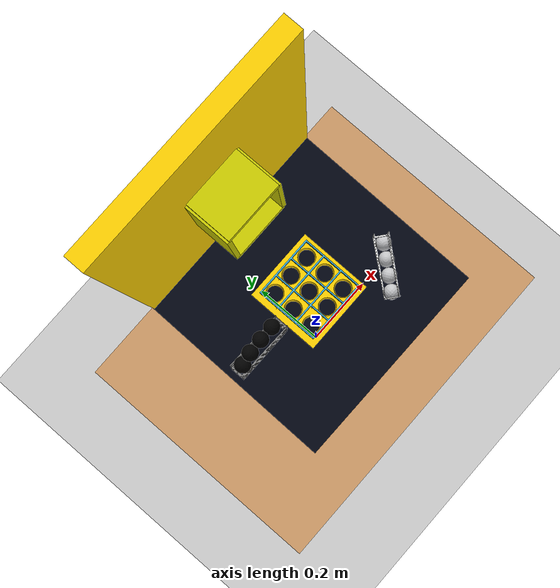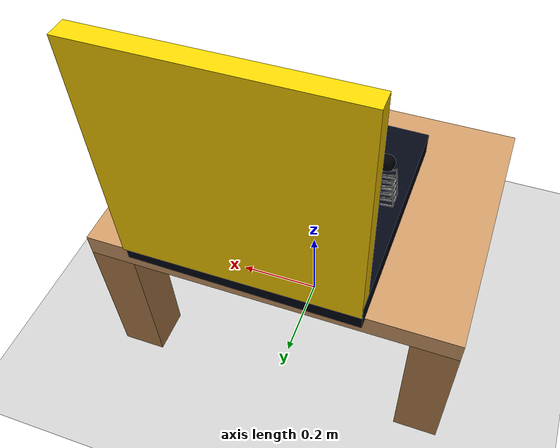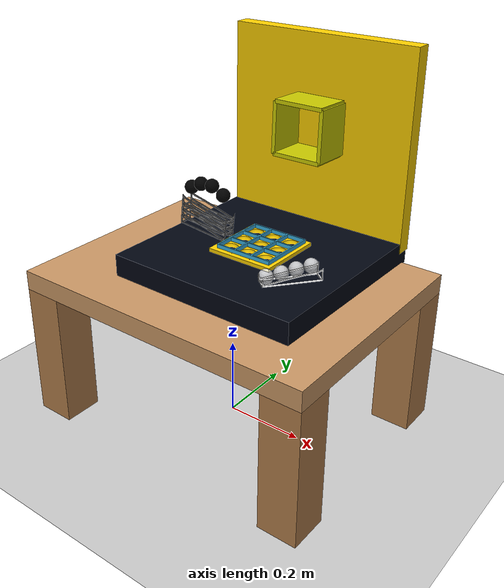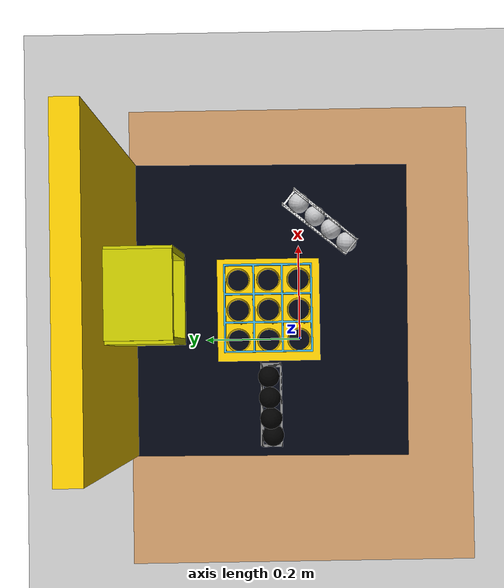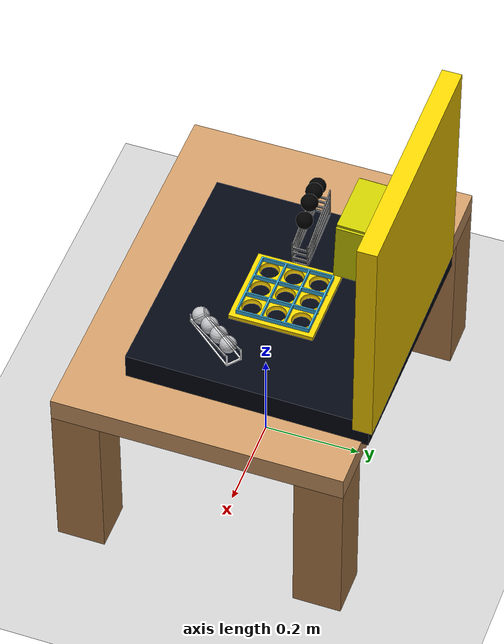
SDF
<sdf version="1.10">
 <world name="WORKINGPROTO">
  <physics name="1ms" type="ignored">
   <max_step_size>0.001</max_step_size>
   <real_time_factor>1</real_time_factor>
   <real_time_update_rate>1000</real_time_update_rate>
  </physics>
  <plugin name="gz::sim::systems::Physics" filename="gz-sim-physics-system"/>
  <plugin name="gz::sim::systems::UserCommands" filename="gz-sim-user-commands-system"/>
  <plugin name="gz::sim::systems::SceneBroadcaster" filename="gz-sim-scene-broadcaster-system"/>
  <plugin name="gz::sim::systems::Sensors" filename="gz-sim-sensors-system">
   <render_engine>ogre2</render_engine>
  </plugin>
  <gravity>0 0 -9.8000000000000007</gravity>
  <magnetic_field>5.5644999999999998e-06 2.2875799999999999e-05 -4.2388400000000002e-05</magnetic_field>
  <atmosphere type="adiabatic"/>
  <scene>
   <ambient>0.400000006 0.400000006 0.400000006 1</ambient>
   <background>0.699999988 0.699999988 0.699999988 1</background>
   <shadows>true</shadows>
  </scene>
  <model name="ground_plane">
   <static>true</static>
   <link name="link">
    <collision name="collision">
     <geometry><plane><normal>0 0 1</normal><size>100 100</size></plane></geometry>
     <surface>
      <contact><collide_bitmask>65535</collide_bitmask><ode><mu>100</mu><mu2>50</mu2></ode></contact>
      <friction><ode><mu>100</mu><mu2>50</mu2></ode></friction>
     </surface>
    </collision>
    <visual name="visual">
     <cast_shadows>false</cast_shadows>
     <geometry><plane><normal>0 0 1</normal><size>100 100</size></plane></geometry>
     <material>
      <ambient>0.800000012 0.800000012 0.800000012 1</ambient>
      <diffuse>0.800000012 0.800000012 0.800000012 1</diffuse>
      <specular>0 0 0 1</specular>
     </material>
    </visual>
    <inertial>
     <mass>1</mass>
     <inertia><ixx>1</ixx><ixy>0</ixy><ixz>0</ixz><iyy>1</iyy><iyz>0</iyz><izz>1</izz></inertia>
    </inertial>
   </link>
  </model>
  <model name="study_table">
   <static>true</static>
   <link name="table_link">
    <inertial>
     <mass>50</mass>
     <inertia><ixx>10</ixx><iyy>8</iyy><izz>6</izz><ixy>0</ixy><ixz>0</ixz><iyz>0</iyz></inertia>
    </inertial>
    <visual name="table_top">
     <pose>0 0 0.375 0 0 0</pose>
     <geometry><box><size>0.80000000000000004 0.59999999999999998 0.050000000000000003</size></box></geometry>
     <material>
      <ambient>0.800000012 0.600000024 0.400000006 1</ambient>
      <diffuse>0.800000012 0.600000024 0.400000006 1</diffuse>
     </material>
    </visual>
    <visual name="table_leg1">
     <pose>0.34999999999999998 0.25 0.17499999999999999 0 0 0</pose>
     <geometry><box><size>0.10000000000000001 0.10000000000000001 0.34999999999999998</size></box></geometry>
     <material>
      <ambient>0.699999988 0.5 0.300000012 1</ambient>
      <diffuse>0.699999988 0.5 0.300000012 1</diffuse>
     </material>
    </visual>
    <visual name="table_leg2">
     <pose>-0.34999999999999998 0.25 0.17499999999999999 0 0 0</pose>
     <geometry><box><size>0.10000000000000001 0.10000000000000001 0.34999999999999998</size></box></geometry>
     <material>
      <ambient>0.699999988 0.5 0.300000012 1</ambient>
      <diffuse>0.699999988 0.5 0.300000012 1</diffuse>
     </material>
    </visual>
    <visual name="table_leg3">
     <pose>0.34999999999999998 -0.25 0.17499999999999999 0 0 0</pose>
     <geometry><box><size>0.10000000000000001 0.10000000000000001 0.34999999999999998</size></box></geometry>
     <material>
      <ambient>0.699999988 0.5 0.300000012 1</ambient>
      <diffuse>0.699999988 0.5 0.300000012 1</diffuse>
     </material>
    </visual>
    <visual name="table_leg4">
     <pose>-0.34999999999999998 -0.25 0.17499999999999999 0 0 0</pose>
     <geometry><box><size>0.10000000000000001 0.10000000000000001 0.34999999999999998</size></box></geometry>
     <material>
      <ambient>0.699999988 0.5 0.300000012 1</ambient>
      <diffuse>0.699999988 0.5 0.300000012 1</diffuse>
     </material>
    </visual>
    <collision name="table_collision">
     <pose>0 0 0.375 0 0 0</pose>
     <geometry><box><size>0.80000000000000004 0.59999999999999998 0.050000000000000003</size></box></geometry>
    </collision>
   </link>
  </model>
  <model name="guard_rail">
   <static>true</static>
   <pose>-0.052531500000000002 -0.040552699999999997 0.435197 0 0 0</pose>
   <link name="rail_link">
    <inertial>
     <mass>10</mass>
     <inertia><ixx>1</ixx><iyy>1</iyy><izz>1</izz><ixy>0</ixy><ixz>0</ixz><iyz>0</iyz></inertia>
    </inertial>
    <visual name="rail_visual">
     <geometry>
      <mesh>
       <scale>0.001 0.001 0.001</scale>
       <uri>file:///home/sukritchopra/ros2_ws/src/jetrover_description/models/jetrover/meshes_1/EXTERNAL_MESHES/GUARD_RAILS6.stl</uri>
      </mesh>
     </geometry>
     <material>
      <ambient>0.235294119 0.70588237 0.90196079 1</ambient>
      <diffuse>0.235294119 0.70588237 0.90196079 1</diffuse>
     </material>
    </visual>
    <collision name="rail_collision">
     <geometry>
      <mesh>
       <scale>0.001 0.001 0.001</scale>
       <uri>file:///home/sukritchopra/ros2_ws/src/jetrover_description/models/jetrover/meshes_1/EXTERNAL_MESHES/GUARD_RAILS6.stl</uri>
      </mesh>
     </geometry>
    </collision>
   </link>
  </model>
  <model name="wall">
   <static>true</static>
   <pose>0.044432800000000001 0.30083199999999999 0.82922700000000005 0 0 0</pose>
   <link name="wall_link">
    <inertial>
     <mass>20000000</mass>
     <inertia>
      <ixx>1.6699999999999999</ixx>
      <iyy>2.6699999999999999</iyy>
      <izz>1.0700000000000001</izz>
      <ixy>0</ixy>
      <ixz>0</ixz>
      <iyz>0</iyz>
     </inertia>
    </inertial>
    <visual name="wall_base">
     <pose>0 0 -0.14999999999999999 0 0 0</pose>
     <geometry><box><size>0.49999999999999789 0.040000000000000001 0.49999999999999789</size></box></geometry>
     <material><ambient>1 0.824000001 0 1</ambient><diffuse>1 0.824000001 0 1</diffuse></material>
    </visual>
    <collision name="wall_base_collision">
     <pose>0 0 -0.14999999999999999 0 0 0</pose>
     <geometry><box><size>0.49999999999999789 0.040000000000000001 0.49999999999999789</size></box></geometry>
    </collision>
   </link>
  </model>
  <model name="enclosure_floor">
   <static>true</static>
   <pose>0.19129599999999999 0.064957200000000007 0.425506 1.5700000000000003 -7.7423200004696731e-06 1.5605700000000007</pose>
   <link name="enclosure_floor_link">
    <inertial>
     <mass>20000000</mass>
     <inertia>
      <ixx>1.6699999999999999</ixx>
      <iyy>2.6699999999999999</iyy>
      <izz>1.0700000000000001</izz>
      <ixy>0</ixy>
      <ixz>0</ixz>
      <iyz>0</iyz>
     </inertia>
    </inertial>
    <visual name="enclosure_floor_base">
     <pose>0 0 -0.14999999999999999 0 0 0</pose>
     <geometry><box><size>0.49999999999999778 0.059999999999999998 0.49999999999999789</size></box></geometry>
     <material>
      <ambient>0 0.00400000019 0.0149999997 1</ambient>
      <diffuse>0.00400000019 0.0199999996 0.0700000003 1</diffuse>
     </material>
    </visual>
    <collision name="enclosure_floor_base_collision">
     <pose>0 0 -0.14999999999999999 0 0 0</pose>
     <geometry><box><size>0.49999999999999778 0.059999999999999998 0.49999999999999789</size></box></geometry>
    </collision>
   </link>
  </model>
  <model name="tictactoe_game">
   <static>true</static>
   <pose>-0.046944 -0.032551099999999999 0.449874 8.8383404715047097e-08 9.0853604856917646e-07 -0.00040046502140793193</pose>
   <link name="board">
    <inertial>
     <mass>2</mass>
     <inertia>
      <ixx>0.10000000000000001</ixx>
      <iyy>0.10000000000000001</iyy>
      <izz>0.10000000000000001</izz>
      <ixy>0</ixy>
      <ixz>0</ixz>
      <iyz>0</iyz>
     </inertia>
    </inertial>
    <visual name="board_visual">
     <geometry>
      <mesh>
       <scale>0.001 0.001 0.001</scale>
       <uri>file:///home/sukritchopra/ros2_ws/src/jetrover_description/models/jetrover/meshes_1/EXTERNAL_MESHES/tictactoe_board3.stl</uri>
      </mesh>
     </geometry>
     <material><ambient>1 0.824000001 0 1</ambient><diffuse>1 0.824000001 0 1</diffuse></material>
    </visual>
    <collision name="board_collision">
     <geometry>
      <mesh>
       <scale>0.001 0.001 0.001</scale>
       <uri>file:///home/sukritchopra/ros2_ws/src/jetrover_description/models/jetrover/meshes_1/EXTERNAL_MESHES/tictactoe_board3.stl</uri>
      </mesh>
     </geometry>
    </collision>
   </link>
  </model>
  <model name="o_piece_1">
   <static>false</static>
   <pose>-0.072515569627285115 0.053852200508117704 0.56520098447799694 0.2687919980966173 -0.50521698497660383 2.5619299976307222</pose>
   <link name="o_link">
    <inertial>
     <mass>0.0027000000000000001</mass>
     <inertia>
      <ixx>1.0000000000000001e-05</ixx>
      <iyy>1.0000000000000001e-05</iyy>
      <izz>1.0000000000000001e-05</izz>
      <ixy>0</ixy>
      <ixz>0</ixz>
      <iyz>0</iyz>
     </inertia>
    </inertial>
    <visual name="o_visual">
     <geometry><sphere><radius>0.017500000000000002</radius></sphere></geometry>
     <material><ambient>0 0 0 1</ambient><diffuse>0 0 0 1</diffuse></material>
    </visual>
    <collision name="o_collision">
     <geometry><sphere><radius>0.017500000000000002</radius></sphere></geometry>
    </collision>
   </link>
  </model>
  <model name="o_piece_2">
   <static>false</static>
   <pose>-0.13881699740886688 0.050508301705122008 0.5806404948234557 0.62880698103548927 -0.031144597426716537 -2.8159199855403041</pose>
   <link name="o_link">
    <inertial>
     <mass>0.0027000000000000001</mass>
     <inertia>
      <ixx>1.0000000000000001e-05</ixx>
      <iyy>1.0000000000000001e-05</iyy>
      <izz>1.0000000000000001e-05</izz>
      <ixy>0</ixy>
      <ixz>0</ixz>
      <iyz>0</iyz>
     </inertia>
    </inertial>
    <visual name="o_visual">
     <geometry><sphere><radius>0.017500000000000002</radius></sphere></geometry>
     <material><ambient>0 0 0 1</ambient><diffuse>0 0 0 1</diffuse></material>
    </visual>
    <collision name="o_collision">
     <geometry><sphere><radius>0.017500000000000002</radius></sphere></geometry>
    </collision>
   </link>
  </model>
  <model name="o_piece_4">
   <static>false</static>
   <pose>-0.16654600203037265 0.047658700495958342 0.56697416305541992 0.20077399794900691 -0.48762200204529055 -0.93254698680669312</pose>
   <link name="o_link">
    <inertial>
     <mass>0.0027000000000000001</mass>
     <inertia>
      <ixx>1.0000000000000001e-05</ixx>
      <iyy>1.0000000000000001e-05</iyy>
      <izz>1.0000000000000001e-05</izz>
      <ixy>0</ixy>
      <ixz>0</ixz>
      <iyz>0</iyz>
     </inertia>
    </inertial>
    <visual name="o_visual">
     <geometry><sphere><radius>0.017500000000000002</radius></sphere></geometry>
     <material><ambient>0 0 0 1</ambient><diffuse>0 0 0 1</diffuse></material>
    </visual>
    <collision name="o_collision">
     <geometry><sphere><radius>0.017500000000000002</radius></sphere></geometry>
    </collision>
   </link>
  </model>
  <model name="o_piece_5">
   <static>false</static>
   <pose>-0.10582700371742247 0.052084401249885622 0.58219528198242188 2.5193400048897079 0.17432399700319298 -0.17500699491228519</pose>
   <link name="o_link">
    <inertial>
     <mass>0.0027000000000000001</mass>
     <inertia>
      <ixx>1.0000000000000001e-05</ixx>
      <iyy>1.0000000000000001e-05</iyy>
      <izz>1.0000000000000001e-05</izz>
      <ixy>0</ixy>
      <ixz>0</ixz>
      <iyz>0</iyz>
     </inertia>
    </inertial>
    <visual name="o_visual">
     <geometry><sphere><radius>0.017500000000000002</radius></sphere></geometry>
     <material><ambient>0 0 0 1</ambient><diffuse>0 0 0 1</diffuse></material>
    </visual>
    <collision name="o_collision">
     <geometry><sphere><radius>0.017500000000000002</radius></sphere></geometry>
    </collision>
   </link>
  </model>
  <model name="robot_box">
   <static>true</static>
   <pose>0.048892199999999997 0.232456 0.71249099999999999 1.5400000000000003 0 0</pose>
   <link name="box_link">
    <inertial>
     <mass>5</mass>
     <inertia>
      <ixx>0.10000000000000001</ixx>
      <iyy>0.10000000000000001</iyy>
      <izz>0.10000000000000001</izz>
      <ixy>0</ixy>
      <ixz>0</ixz>
      <iyz>0</iyz>
     </inertia>
    </inertial>
    <visual name="front_wall">
     <pose>0.065000000000000002 0 0 0 0 0</pose>
     <geometry><box><size>0.01 0.13 0.105</size></box></geometry>
     <material>
      <ambient>0.800000012 0.800000012 3.00000003e-09 1</ambient>
      <diffuse>0.800000012 0.800000012 3.00000003e-09 1</diffuse>
     </material>
    </visual>
    <collision name="front_wall_collision">
     <pose>0.065000000000000002 0 0 0 0 0</pose>
     <geometry><box><size>0.01 0.13 0.105</size></box></geometry>
    </collision>
    <visual name="back_wall">
     <pose>-0.065000000000000002 0 0 0 0 0</pose>
     <geometry><box><size>0.01 0.13 0.105</size></box></geometry>
     <material>
      <ambient>0.800000012 0.800000012 3.00000003e-09 1</ambient>
      <diffuse>0.800000012 0.800000012 3.00000003e-09 1</diffuse>
     </material>
    </visual>
    <collision name="back_wall_collision">
     <pose>-0.065000000000000002 0 0 0 0 0</pose>
     <geometry><box><size>0.01 0.13 0.105</size></box></geometry>
    </collision>
    <visual name="left_wall">
     <pose>0 0.065000000000000002 0 0 0 0</pose>
     <geometry><box><size>0.13 0.01 0.105</size></box></geometry>
     <material>
      <ambient>0.800000012 0.800000072 3.00000003e-09 1</ambient>
      <diffuse>0.800000012 0.800000012 3.00000003e-09 1</diffuse>
     </material>
    </visual>
    <collision name="left_wall_collision">
     <pose>0 0.065000000000000002 0 0 0 0</pose>
     <geometry><box><size>0.13 0.01 0.105</size></box></geometry>
    </collision>
    <visual name="right_wall">
     <pose>0 -0.065000000000000002 0 0 0 0</pose>
     <geometry><box><size>0.13 0.01 0.105</size></box></geometry>
     <material>
      <ambient>0.800000012 0.800000012 3.00000003e-09 1</ambient>
      <diffuse>0.800000012 0.800000012 3.00000003e-09 1</diffuse>
     </material>
    </visual>
    <collision name="right_wall_collision">
     <pose>0 -0.065000000000000002 0 0 0 0</pose>
     <geometry><box><size>0.13 0.01 0.105</size></box></geometry>
    </collision>
   </link>
  </model>
  <model name="x_piece_1">
   <static>false</static>
   <pose>0.19745399999999999 -0.026345799999999999 0.48376000000000002 3.10039 0.26486599999999999 3.02956</pose>
   <link name="x_link">
    <inertial>
     <mass>0.0027000000000000001</mass>
     <inertia>
      <ixx>1.0000000000000001e-05</ixx>
      <iyy>1.0000000000000001e-05</iyy>
      <izz>1.0000000000000001e-05</izz>
      <ixy>0</ixy>
      <ixz>0</ixz>
      <iyz>0</iyz>
     </inertia>
    </inertial>
    <visual name="x_visual">
     <geometry><sphere><radius>0.017500000000000002</radius></sphere></geometry>
     <material><ambient>1 1 1 0.800000012</ambient><diffuse>1 1 1 0.800000012</diffuse></material>
    </visual>
    <collision name="x_collision">
     <geometry><sphere><radius>0.017500000000000002</radius></sphere></geometry>
    </collision>
   </link>
  </model>
  <model name="x_piece_2">
   <static>false</static>
   <pose>0.17572499999999999 -0.053232099999999997 0.47828500000000002 1.3524800000000003 -0.44478999999999974 2.1323599999999998</pose>
   <link name="x_link">
    <inertial>
     <mass>0.0027000000000000001</mass>
     <inertia>
      <ixx>1.0000000000000001e-05</ixx>
      <iyy>1.0000000000000001e-05</iyy>
      <izz>1.0000000000000001e-05</izz>
      <ixy>0</ixy>
      <ixz>0</ixz>
      <iyz>0</iyz>
     </inertia>
    </inertial>
    <visual name="x_visual">
     <geometry><sphere><radius>0.017500000000000002</radius></sphere></geometry>
     <material><ambient>1 1 1 0.800000012</ambient><diffuse>1 1 1 0.800000012</diffuse></material>
    </visual>
    <collision name="x_collision">
     <geometry><sphere><radius>0.017500000000000002</radius></sphere></geometry>
    </collision>
   </link>
  </model>
  <model name="x_piece_4">
   <static>false</static>
   <pose>0.21925968878893168 0.00063547288284252087 0.48839967942072687 3.0379236048981646 -0.70402693821082252 1.3188255798494104</pose>
   <link name="x_link">
    <inertial>
     <mass>0.0027000000000000001</mass>
     <inertia>
      <ixx>1.0000000000000001e-05</ixx>
      <iyy>1.0000000000000001e-05</iyy>
      <izz>1.0000000000000001e-05</izz>
      <ixy>0</ixy>
      <ixz>0</ixz>
      <iyz>0</iyz>
     </inertia>
    </inertial>
    <visual name="x_visual">
     <geometry><sphere><radius>0.017500000000000002</radius></sphere></geometry>
     <material><ambient>1 1 1 0.800000012</ambient><diffuse>1 1 1 0.800000012</diffuse></material>
    </visual>
    <collision name="x_collision">
     <geometry><sphere><radius>0.017500000000000002</radius></sphere></geometry>
    </collision>
   </link>
  </model>
  <model name="x_piece_5">
   <static>false</static>
   <pose>0.15351300000000001 -0.079790799999999995 0.47316000000000003 1.66568 0.25211700000000037 3.1147800000000001</pose>
   <link name="x_link">
    <inertial>
     <mass>0.0027000000000000001</mass>
     <inertia>
      <ixx>1.0000000000000001e-05</ixx>
      <iyy>1.0000000000000001e-05</iyy>
      <izz>1.0000000000000001e-05</izz>
      <ixy>0</ixy>
      <ixz>0</ixz>
      <iyz>0</iyz>
     </inertia>
    </inertial>
    <visual name="x_visual">
     <geometry><sphere><radius>0.017500000000000002</radius></sphere></geometry>
     <material><ambient>1 1 1 0.800000012</ambient><diffuse>1 1 1 0.800000012</diffuse></material>
    </visual>
    <collision name="x_collision">
     <geometry><sphere><radius>0.017500000000000002</radius></sphere></geometry>
    </collision>
   </link>
  </model>
  <model name="ball_store_grey">
   <static>true</static>
   <pose>-0.1176244392991066 0.051645189523696899 0.52776569128036499 0.014178599663088839 -0.10076700385042525 -3.1383999998994159</pose>
   <link name="ball_store_link">
    <inertial>
     <mass>1</mass>
     <inertia>
      <ixx>0.10000000000000001</ixx>
      <iyy>0.10000000000000001</iyy>
      <izz>0.10000000000000001</izz>
      <ixy>0</ixy>
      <ixz>0</ixz>
      <iyz>0</iyz>
     </inertia>
    </inertial>
    <visual name="ball_store_visual">
     <geometry>
      <mesh>
       <scale>0.001 0.001 0.001</scale>
       <uri>file:///home/sukritchopra/ros2_ws/src/jetrover_description/models/jetrover/meshes_1/EXTERNAL_MESHES/Slider_Bracket2.STL</uri>
      </mesh>
     </geometry>
     <material><ambient>0.5 0.5 0.5 1</ambient><diffuse>0.5 0.5 0.5 1</diffuse></material>
    </visual>
    <collision name="ball_store_collision">
     <geometry>
      <mesh>
       <scale>0.001 0.001 0.001</scale>
       <uri>file:///home/sukritchopra/ros2_ws/src/jetrover_description/models/jetrover/meshes_1/EXTERNAL_MESHES/Slider_Bracket2.STL</uri>
      </mesh>
     </geometry>
    </collision>
   </link>
  </model>
  <model name="ball_store_white">
   <static>true</static>
   <pose>0.18989700000000001 -0.035378399999999997 0.45074999999999998 0 0 0.89109000000000027</pose>
   <link name="ball_store_link">
    <inertial>
     <mass>1</mass>
     <inertia>
      <ixx>0.10000000000000001</ixx>
      <iyy>0.10000000000000001</iyy>
      <izz>0.10000000000000001</izz>
      <ixy>0</ixy>
      <ixz>0</ixz>
      <iyz>0</iyz>
     </inertia>
    </inertial>
    <visual name="ball_store_visual">
     <geometry>
      <mesh>
       <scale>0.001 0.001 0.001</scale>
       <uri>file:///home/sukritchopra/ros2_ws/src/jetrover_description/models/jetrover/meshes_1/EXTERNAL_MESHES/Slider_Bracket.stl</uri>
      </mesh>
     </geometry>
     <material><ambient>1 1 1 1</ambient><diffuse>1 1 1 1</diffuse></material>
    </visual>
    <collision name="ball_store_collision">
     <geometry>
      <mesh>
       <scale>0.001 0.001 0.001</scale>
       <uri>file:///home/sukritchopra/ros2_ws/src/jetrover_description/models/jetrover/meshes_1/EXTERNAL_MESHES/Slider_Bracket.stl</uri>
      </mesh>
     </geometry>
    </collision>
   </link>
  </model>
  <light name="sun" type="directional">
   <pose>0 0 10 0 0 0</pose>
   <intensity>1</intensity>
   <direction>-0.5 0.10000000000000001 -0.90000000000000002</direction>
   <diffuse>0.800000012 0.800000012 0.800000012 1</diffuse>
   <specular>0.200000003 0.200000003 0.200000003 1</specular>
   <attenuation>
    <range>1000</range>
    <linear>0.0099999997764825821</linear>
    <constant>0.89999997615814209</constant>
    <quadratic>0.0010000000474974513</quadratic>
   </attenuation>
   <spot><inner_angle>0</inner_angle><outer_angle>0</outer_angle><falloff>0</falloff></spot>
  </light>
 </world>
</sdf>
